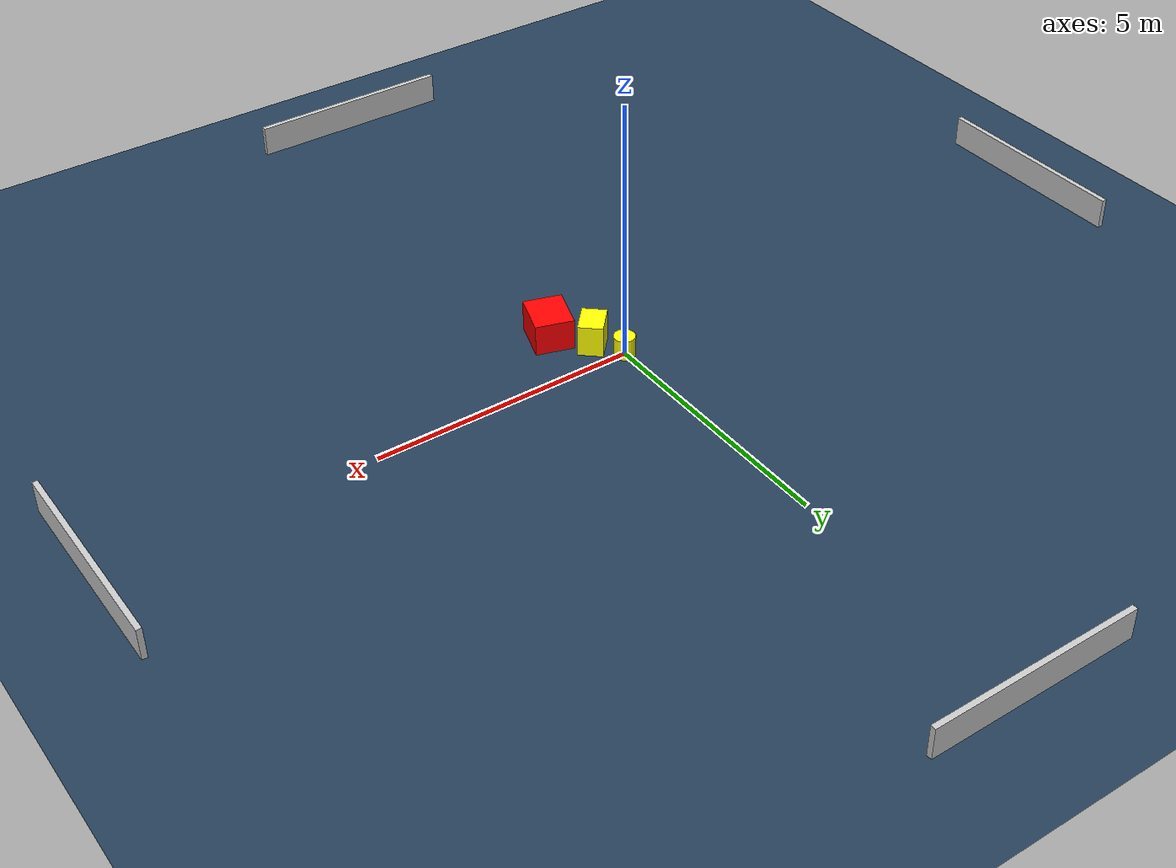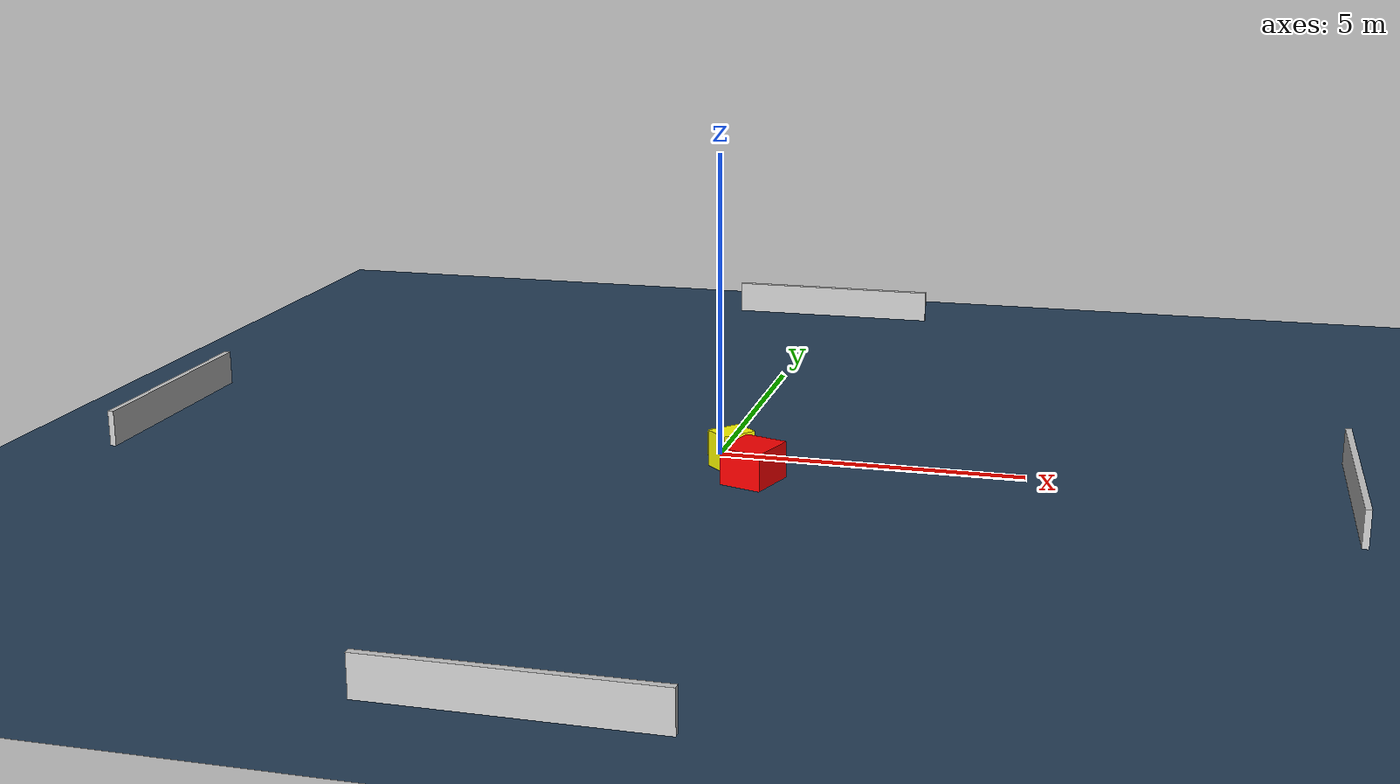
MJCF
<?xml version="1.0" ?>
<mujoco model="generated_environment">
  <option timestep="0.01" integrator="RK4" cone="elliptic"/>
  <default>
    <geom density="1"/>
  </default>
  <asset>
    <texture builtin="gradient" height="3072" name="skybox" rgb1="0.3 0.5 0.7" rgb2="0 0 0" type="skybox" width="512"/>
    <texture builtin="checker" height="300" name="groundplane" rgb1="0.2 0.3 0.4" rgb2="0.1 0.2 0.3" type="2d" width="300"/>
    <material name="groundplane" reflectance="0.2" texrepeat="5 5" texture="groundplane"/>
  </asset>
  <worldbody>
    <light dir="0 0 -1" directional="true" pos="0 0 1.5"/>
    <geom condim="3" friction="0.5 0.005 0.001" material="groundplane" name="floor" pos="0 0 0" size="0 0 0.05" type="plane"/>
    <body name="walls">
      <geom name="wall_1" condim="4" pos="-10.0 0.0 0.3" rgba="0.800000011920929 0.800000011920929 0.800000011920929 1.0" size="0.05 2.0 0.3" type="box"/>
      <geom name="wall_2" condim="4" pos="10.0 0.0 0.3" rgba="0.800000011920929 0.800000011920929 0.800000011920929 1.0" size="0.05 2.0 0.3" type="box"/>
      <geom name="wall_3" condim="4" pos="0.0 -10.0 0.3" rgba="0.800000011920929 0.800000011920929 0.800000011920929 1.0" size="2.0 0.05 0.3" type="box"/>
      <geom name="wall_4" condim="4" pos="0.0 10.0 0.3" rgba="0.800000011920929 0.800000011920929 0.800000011920929 1.0" size="2.0 0.05 0.3" type="box"/>
    </body>
    <body name="robot">
      <joint name="joint_x" type="slide" pos="0 0 0" axis="1 0 0"/>
      <joint name="joint_y" type="slide" pos="0 0 0" axis="0 1 0"/>
      <geom name="robot" type="cylinder" pos="0.0 0.0 0.2" size="0.2 0.2 0.0" mass="5.0" friction="1.0 0.005 0.0001" condim="4" rgba="1.0 1.0 0.0 1.0"/>
    </body>
    <body name="obstacle_1_movable">
      <geom name="obstacle_1_movable" condim="4" pos="0.32218181213191394 -0.5251305132689295 0.3" euler="0 0 47.49938129375983" friction="0.0 0.005 0.001" rgba="1.0 1.0 0.0 1.0" size="0.2992900588742412 0.23067967399469802 0.3" type="box" mass="0.1"/>
      <joint type="free"/>
    </body>
    <body name="obstacle_2_static">
      <geom name="obstacle_2_static" condim="4" pos="0.8295246291308674 -1.1702647732492606 0.3" euler="0 0 72.32569784806157" friction="0.0 0.005 0.001" rgba="1.0 0.0 0.0 1.0" size="0.4214831070182333 0.36124228619817444 0.3" type="box"/>
    </body>
  </worldbody>
  <actuator>
    <motor name="actuator_x" joint="joint_x" gear="1" ctrlrange="-1 1"/>
    <motor name="actuator_y" joint="joint_y" gear="1" ctrlrange="-1 1"/>
  </actuator>
</mujoco>
